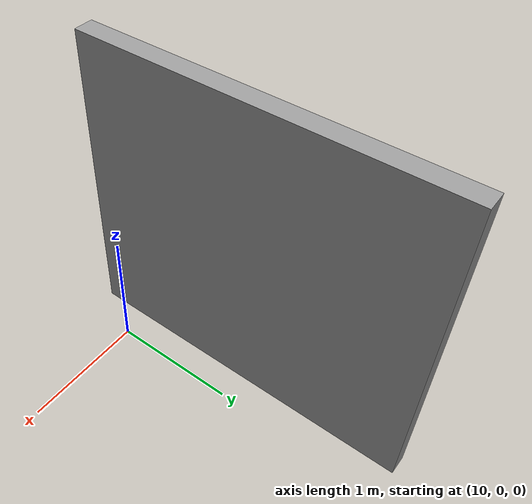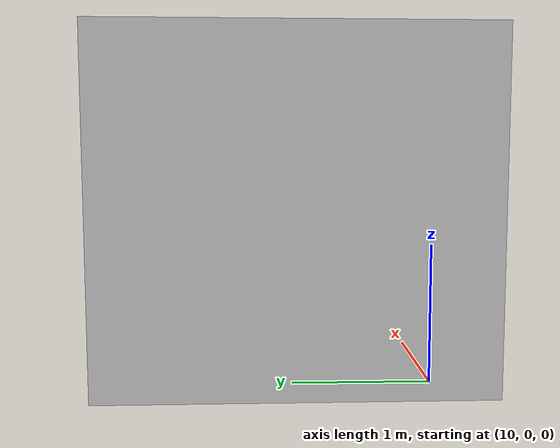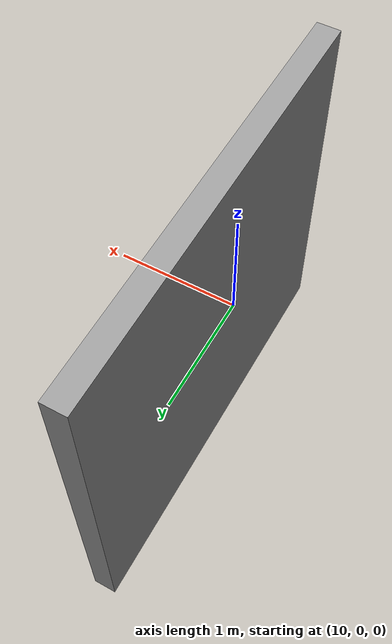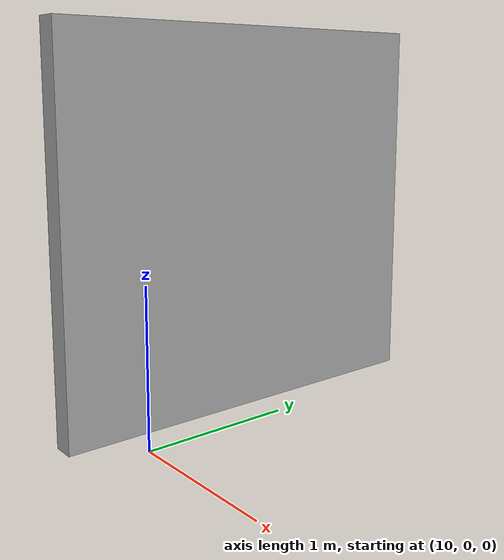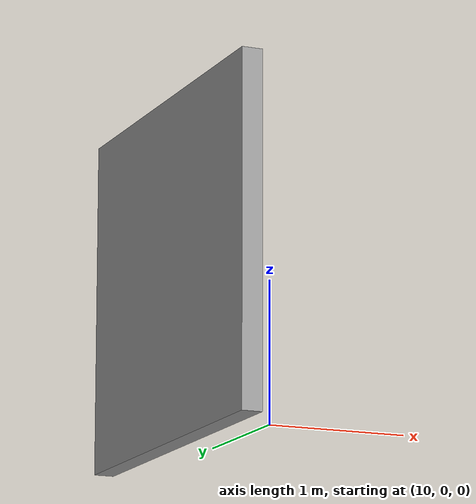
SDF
<?xml version='1.0'?>
<sdf version='1.6'>
  <model name='khaled_model'>
    <pose frame=''>9.69461 0.971079 0 0 -0 0</pose>
    <link name='Wall_11'>
      <collision name='Wall_11_Collision'>
        <geometry>
          <box>
            <size>2.75 0.15 2.5</size>
          </box>
        </geometry>
        <pose frame=''>0 0 1.25 0 -0 0</pose>
      </collision>
      <visual name='Wall_11_Visual'>
        <pose frame=''>0 0 1.25 0 -0 0</pose>
        <geometry>
          <box>
            <size>2.75 0.15 2.5</size>
          </box>
        </geometry>
        <material>
          <script>
            <uri>file://media/materials/scripts/gazebo.material</uri>
            <name>Gazebo/Grey</name>
          </script>
          <ambient>1 1 1 1</ambient>
        </material>
        <meta>
          <layer>0</layer>
        </meta>
      </visual>
      <pose frame=''>0 0 0 0 -0 -1.5708</pose>
    </link>
    <static>1</static>
  </model>
</sdf>
